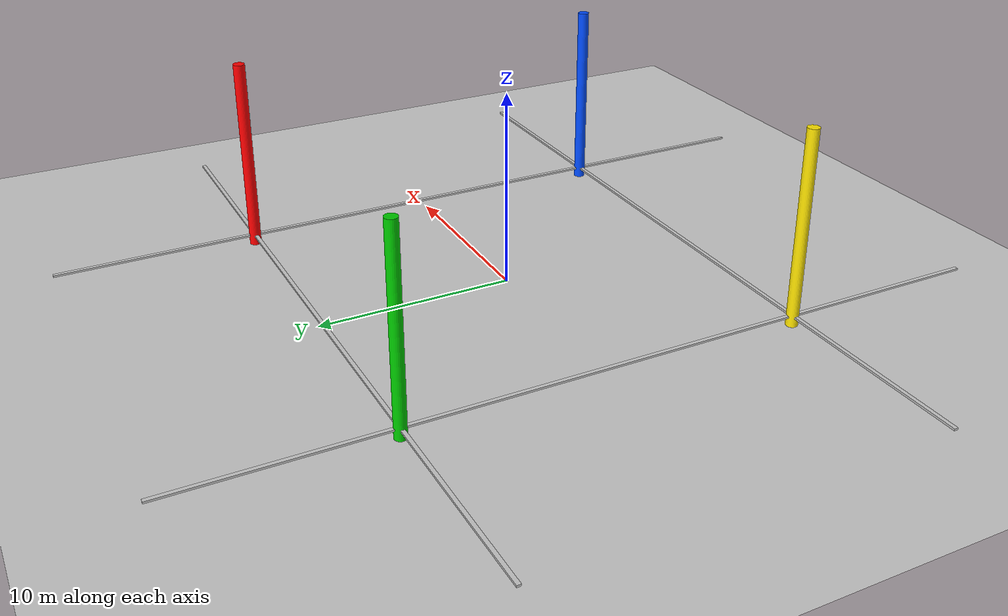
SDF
<?xml version="1.0" ?>
<sdf version="1.6">
  <world name="simple_world">

    <!-- ================== Sol ================== -->
    <model name="ground_plane">
      <static>true</static>
      <link name="link">
        <collision name="collision">
          <geometry>
            <plane>
              <normal>0 0 1</normal>
              <size>100 100</size>
            </plane>
          </geometry>
        </collision>
        <visual name="visual">
          <geometry>
            <plane>
              <normal>0 0 1</normal>
              <size>100 100</size>
            </plane>
          </geometry>
          <material>
            <ambient>0.8 0.8 0.8 1</ambient>
            <diffuse>0.8 0.8 0.8 1</diffuse>
            <specular>0.8 0.8 0.8 1</specular>
          </material>
        </visual>
      </link>
    </model>

    <!-- ================== Lumière ================== -->
    <light name="sun" type="directional">
      <cast_shadows>true</cast_shadows>
      <pose>0 0 10 0 0 0</pose>
      <diffuse>1 1 1 1</diffuse>
      <specular>0.2 0.2 0.2 1</specular>
      <direction>-0.5 0.1 -0.9</direction>
    </light>

    <!-- ================== Scene ================== -->
    <scene>
      <ambient>0.4 0.4 0.4 1</ambient>
      <background>0.7 0.7 0.7 1</background>
      <shadows>true</shadows>
    </scene>

    <!--  MURS  -->

    <model name="wall_north">
      <static>true</static>
      <pose>0 10 0.5 0 0 0</pose>
      <link name="link">
        <collision name="col">
          <geometry><box><size>40.8 0.2 0.1</size></box></geometry>
        </collision>
        <visual name="vis">
          <geometry><box><size>40.8 0.2 0.1</size></box></geometry>
          <material><ambient>0.8 0.8 0.8 1</ambient><diffuse>0.8 0.8 0.8 1</diffuse></material>
        </visual>
      </link>
    </model>

    <model name="wall_south">
      <static>true</static>
      <pose>0 -10 0.5 0 0 0</pose>
      <link name="link">
        <collision name="col">
          <geometry><box><size>40.8 0.2 0.1</size></box></geometry>
        </collision>
        <visual name="vis">
          <geometry><box><size>40.8 0.2 0.1</size></box></geometry>
          <material><ambient>0.8 0.8 0.8 1</ambient><diffuse>0.8 0.8 0.8 1</diffuse></material>
        </visual>
      </link>
    </model>

    <model name="wall_east">
      <static>true</static>
      <pose>10 0 0.5 0 0 0</pose>
      <link name="link">
        <collision name="col">
          <geometry><box><size>0.2 40.8 0.1</size></box></geometry>
        </collision>
        <visual name="vis">
          <geometry><box><size>0.2 40.8 0.1</size></box></geometry>
          <material><ambient>0.8 0.8 0.8 1</ambient><diffuse>0.8 0.8 0.8 1</diffuse></material>
        </visual>
      </link>
    </model>

    <model name="wall_west">
      <static>true</static>
      <pose>-10 0 0.5 0 0 0</pose>
      <link name="link">
        <collision name="col">
          <geometry><box><size>0.2 40.8 0.1</size></box></geometry>
        </collision>
        <visual name="vis">
          <geometry><box><size>0.2 40.8 0.1</size></box></geometry>
          <material><ambient>0.8 0.8 0.8 1</ambient><diffuse>0.8 0.8 0.8 1</diffuse></material>
        </visual>
      </link>
    </model>

    <!--  BALISES aux 4 coins  (cylindres hauts et colorés)       -->

    <model name="tower_NE">
      <static>true</static>
      <pose>10 10 5 0 0 0</pose>
      <link name="link">
        <collision name="col">
          <geometry><cylinder><radius>0.3</radius><length>10.0</length></cylinder></geometry>
        </collision>
        <visual name="vis">
          <geometry><cylinder><radius>0.3</radius><length>10.0</length></cylinder></geometry>
          <material><ambient>1 0 0 1</ambient><diffuse>1 0 0 1</diffuse></material>
        </visual>
      </link>
    </model>

    <model name="tower_NW">
      <static>true</static>
      <pose>-10 10 5 0 0 0</pose>
      <link name="link">
        <collision name="col">
          <geometry><cylinder><radius>0.3</radius><length>10.0</length></cylinder></geometry>
        </collision>
        <visual name="vis">
          <geometry><cylinder><radius>0.3</radius><length>10.0</length></cylinder></geometry>
          <material><ambient>0 0.8 0 1</ambient><diffuse>0 0.8 0 1</diffuse></material>
        </visual>
      </link>
    </model>

    <model name="tower_SE">
      <static>true</static>
      <pose>10 -10 5 0 0 0</pose>
      <link name="link">
        <collision name="col">
          <geometry><cylinder><radius>0.3</radius><length>10.0</length></cylinder></geometry>
        </collision>
        <visual name="vis">
          <geometry><cylinder><radius>0.3</radius><length>10.0</length></cylinder></geometry>
          <material><ambient>0 0.3 1 1</ambient><diffuse>0 0.3 1 1</diffuse></material>
        </visual>
      </link>
    </model>

    <model name="tower_SW">
      <static>true</static>
      <pose>-10 -10 5 0 0 0</pose>
      <link name="link">
        <collision name="col">
          <geometry><cylinder><radius>0.3</radius><length>10.0</length></cylinder></geometry>
        </collision>
        <visual name="vis">
          <geometry><cylinder><radius>0.3</radius><length>10.0</length></cylinder></geometry>
          <material><ambient>1 0.9 0 1</ambient><diffuse>1 0.9 0 1</diffuse></material>
        </visual>
      </link>
    </model>

  </world>
</sdf>
